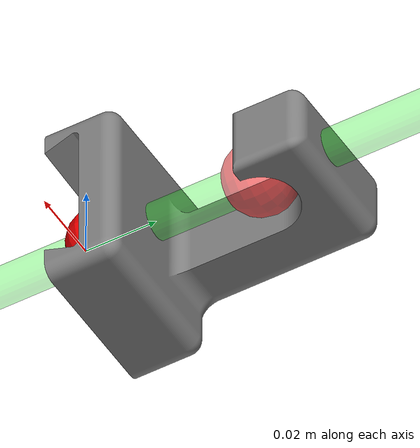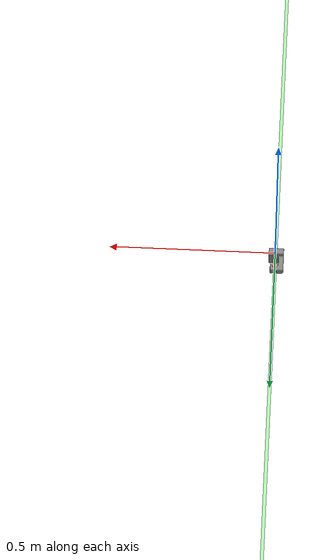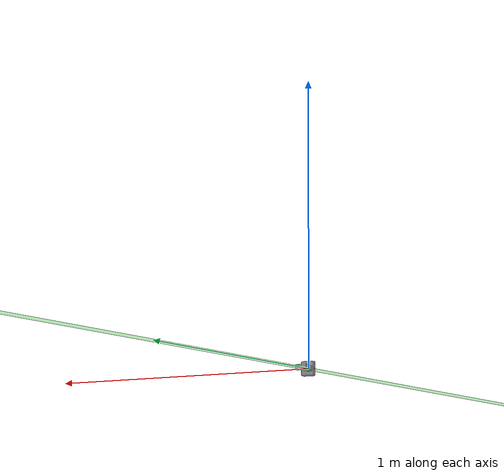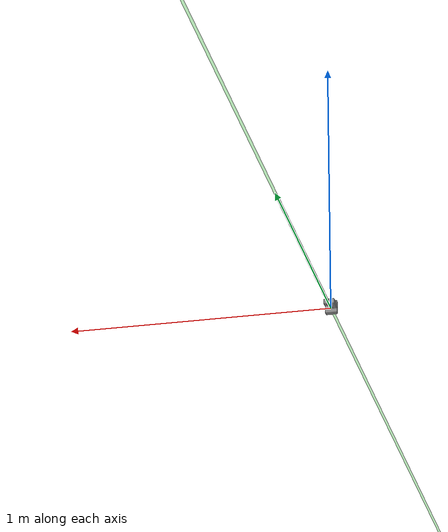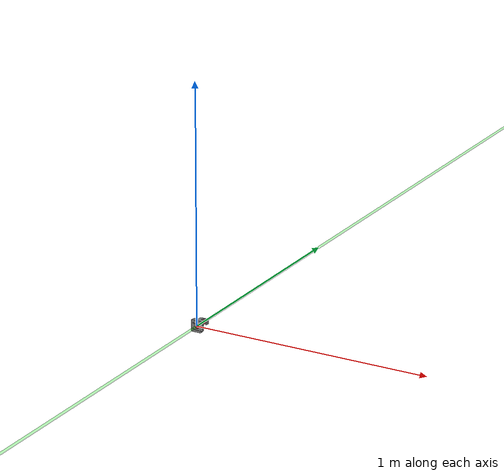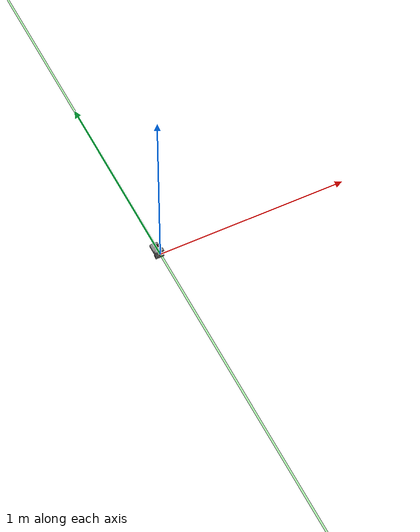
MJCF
<mujoco model="hook">
    <compiler angle="radian" meshdir="meshes/hook_gripper" autolimits="true"/>

    <asset>
        <mesh class="hook" name="hook_mesh" file="gripper_hook_binary.stl" />
    </asset>

    <default>
        <default class="hook">
            <mesh scale="0.001 0.001 0.001" />
        </default>
    </default>

    <worldbody>
        <body name="hook_gripper" pos="0 0 0">
            <site name="ft_frame" pos="0 5.5E-03 0" size="0.01 0.01 0.01" rgba="1 0 0 1" type="sphere" group="1"/>
            <geom name="" type="mesh" mesh="hook_mesh" group="1" pos="0 0 0" euler="0 0 0" />
            <inertial pos="-6.887E-03 26.533E-03 0.014E-03" mass="57.70E-03" fullinertia="35363.467E-09 18046.14E-09 35665.868E-09 1310.376E-09 -7.748E-09 16.896E-09" />
            <!-- This site was added for visualization. -->
            <body name="eef" pos="0 0.05 0" euler="1.5708 0 0">
                <site name="grip_site" pos="0 0 0" size="0.01 0.01 0.01" rgba="1 0 0 0.5" type="sphere" group="1"/>
                <site name="ee_x" pos="0.1 0 0" size="0.005 .1"  quat="0.707105  0 0.707108 0 " rgba="1 0 0 0" type="cylinder" group="1"/>
                <site name="ee_y" pos="0 0.1 0" size="0.005 .1" quat="0.707105 0.707108 0 0" rgba="0 1 0 0" type="cylinder" group="1"/>
                <site name="ee_z" pos="0 0 0.1" size="0.005 .1" quat="1 0 0 0" rgba="0 0 1 0" type="cylinder" group="1"/>
                <!-- This site was added for visualization. -->
                <site name="grip_site_cylinder" pos="0 0 0" size="0.005 10" rgba="0 1 0 0.3" type="cylinder" group="1"/>
            </body>
        </body>
    </worldbody>

    <sensor>
        <force name="force_ee" site="ft_frame"/>
        <torque name="torque_ee" site="ft_frame"/>
    </sensor>
</mujoco>
